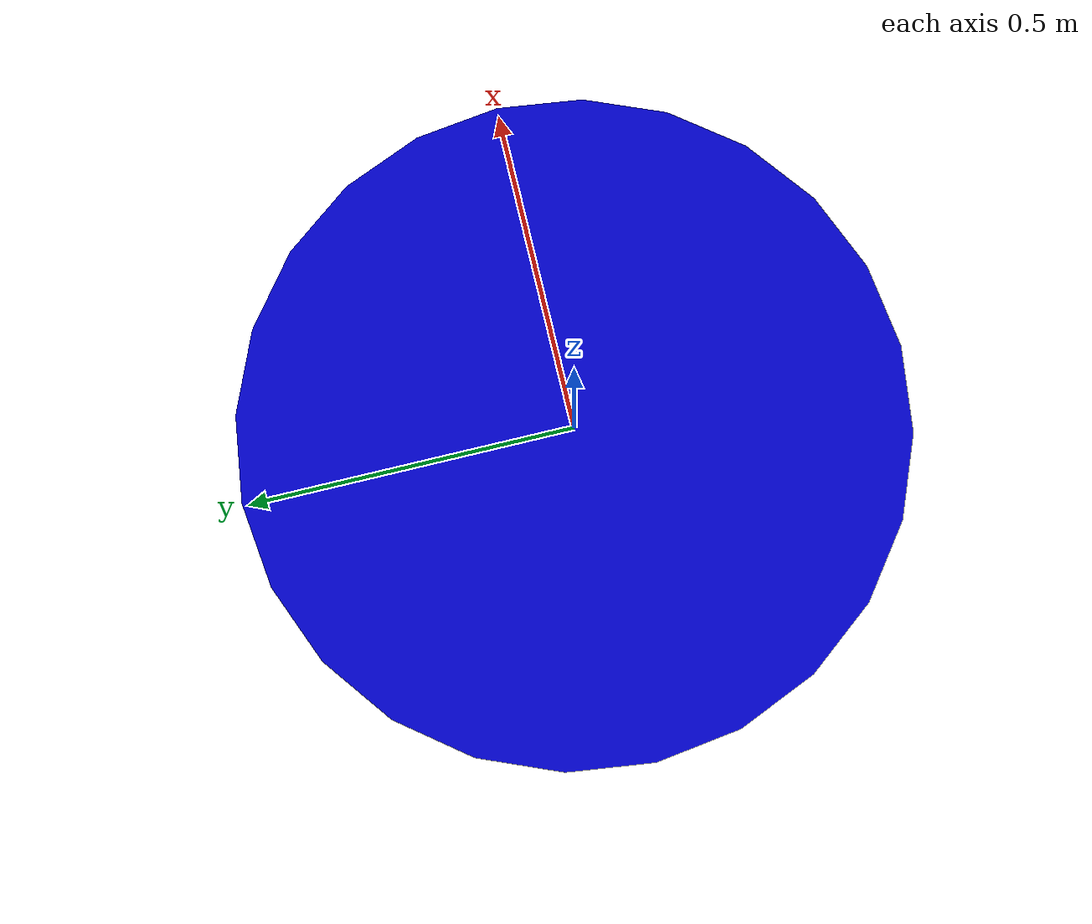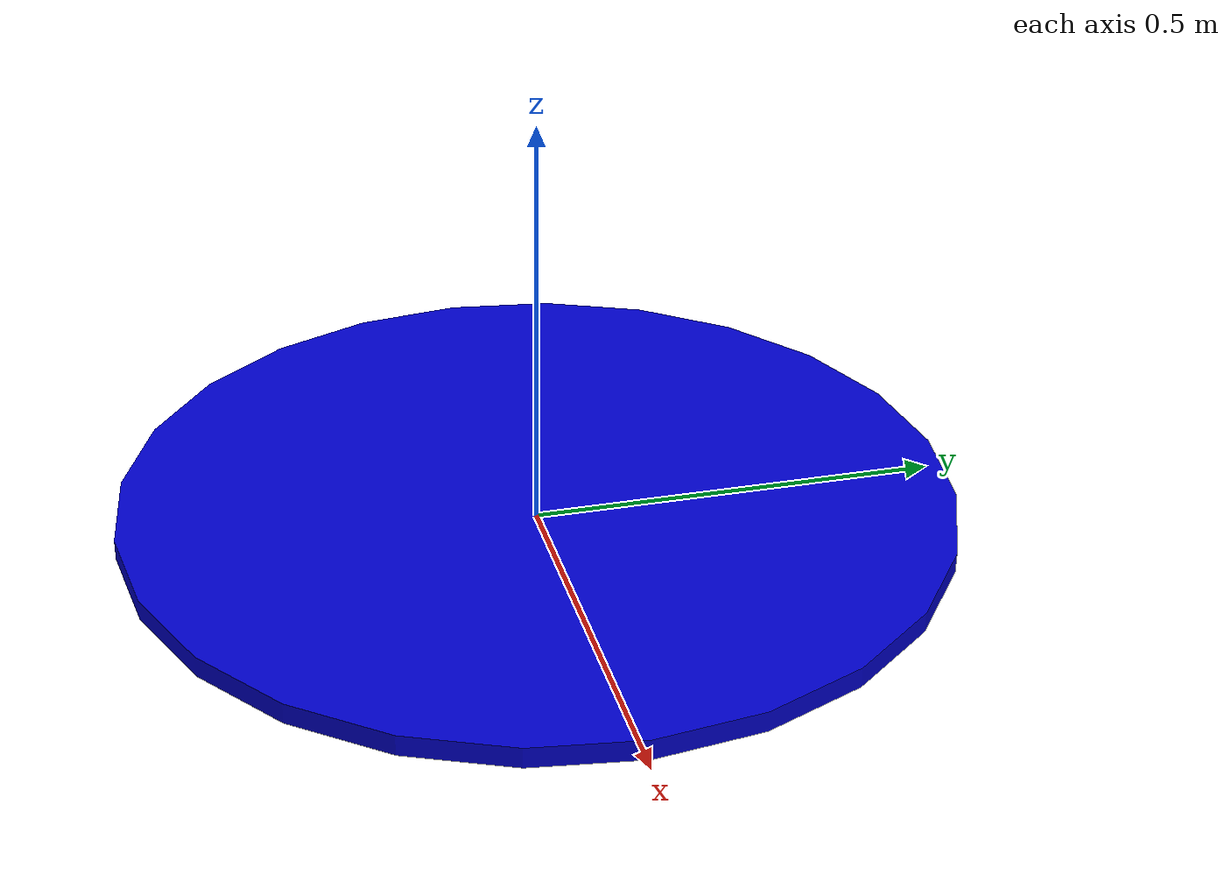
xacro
<?xml version="1.0"?>
<robot xmlns:xacro="http://wiki.ros.org/xacro" name="diy_robot_cell">

<!--include recommendet macros with dependend descriptions-->
    <xacro:include filename="$(find diy_robot_full_cell_description)/urdf/subframe_macro.urdf.xacro"/>

<!--set arguments passed to the table macro-->
    <xacro:arg name="tf_prefix" default=""/>

<!--call the table macro-->
    <link name="world"/>
    <xacro:simple_subframe tf_prefix="$(arg tf_prefix)" parent="world">
        <origin xyz="0 0 0" rpy="0 0 0"/>
    </xacro:simple_subframe>

</robot>

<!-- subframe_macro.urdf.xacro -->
<!--this file contains a simple geometry description of the subframe the robotarm is mounted on-->
<!-- in this version we use a simple, flat disc under the robot to prevent colldiding with everything under base z = 0 -->

<!-- in further versions you can pass a stl file in the meshes directory to specify your custom subframe-->
<robot xmlns:xacro="http://wiki.ros.org/xacro">

<!--include materials macro-->
    <xacro:include filename="$(find diy_robot_full_cell_description)/urdf/materials.urdf.xacro"/>

<!--specify parametes for building the simple_subframe (in m)-->
    <xacro:property name="disc_height" value="0.05"/>
    <xacro:property name="disc_radius" value="0.5"/>

<!--call this macro in the main urdf.xacro to use a siple desk subframe-->
    <xacro:macro name="simple_subframe" params="tf_prefix parent *origin">

        <joint name="${tf_prefix}parentTOsubframe" type="fixed">
            <xacro:insert_block name="origin"/>
            <parent link="${parent}"/>
            <child link="${tf_prefix}subframe_link"/>
        </joint>

        <link name="${tf_prefix}subframe_link">
            <visual>
                <origin xyz="0 0 ${disc_height/2}" rpy="0 0 0"/>    <!--set the origin to the bottom of the subframe = world -->
                <geometry>
                    <cylinder length="${disc_height/2}" radius="${disc_radius}"/>
                </geometry>
                <material name="blue"/>
            </visual>
            <collision>
                <origin xyz="0 0 ${disc_height/2}" rpy="0 0 0"/>
                <geometry>
                    <cylinder length="${disc_height/2}" radius="${disc_radius}"/>
                </geometry>
            </collision>
        </link>
    </xacro:macro>

<!--call this macro to use a custom subframe-->
    <xacro:macro name="custom_subframe" params="tf_prefix parent *origin">

        <joint name="${tf_prefix}subframe_joint" type="fixed">
            <xacro:insert_block name="origin"/>
            <parent link="${parent}"/>
            <child link="${tf_prefix}subframe_link"/>
        </joint>

        <link name="${tf_prefix}subframe_link">
            <visual>
                <origin xyz="0 0 0" rpy="0 0 0"/>
                <geometry>
                    <mesh filename="package://diy_robot_full_cell_description/meshes/visual/subframe.stl" scale="0.001 0.001 0.001"/>
                </geometry>
                <material name="black"/>
            </visual>
            <collision>
                <origin xyz="0 0 0" rpy="0 0 0"/>
                <geometry>
                    <mesh filename="package://diy_robot_full_cell_description/meshes/collision/subframe.stl" scale="0.001 0.001 0.001"/>
                </geometry>
            </collision>
        </link>

    </xacro:macro>

</robot>

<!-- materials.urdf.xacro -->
<!--
Copied from ROS1 example:
https://github.com/ros-simulation/gazebo_ros_demos/blob/kinetic-devel/rrbot_description/urdf/materials.xacro
-->

<robot>

  <material name="black">
    <color rgba="0.0 0.0 0.0 1.0"/>
  </material>

  <material name="blue">
    <color rgba="0.0 0.0 0.8 1.0"/>
  </material>

  <material name="green">
    <color rgba="0.0 0.8 0.0 1.0"/>
  </material>

  <material name="yellow">
    <color rgba="1.0 1.0 0.0 1.0"/>
  </material>

  <material name="grey">
    <color rgba="0.6 0.6 0.6 1.0"/>
  </material>

  <material name="orange">
    <color rgba="${255/255} ${108/255} ${10/255} 1.0"/>
  </material>

  <material name="brown">
    <color rgba="${222/255} ${207/255} ${195/255} 1.0"/>
  </material>

  <material name="red">
    <color rgba="0.8 0.0 0.0 1.0"/>
  </material>

  <material name="white">
    <color rgba="1.0 1.0 1.0 1.0"/>
  </material>

</robot>
